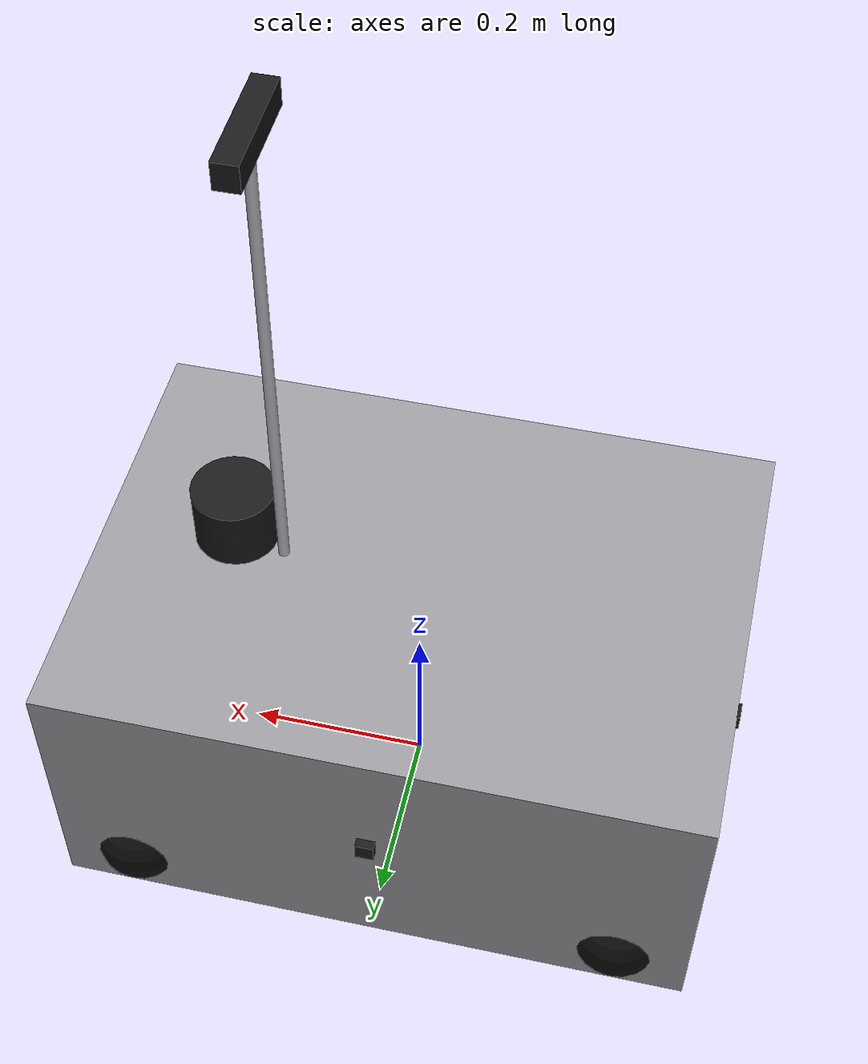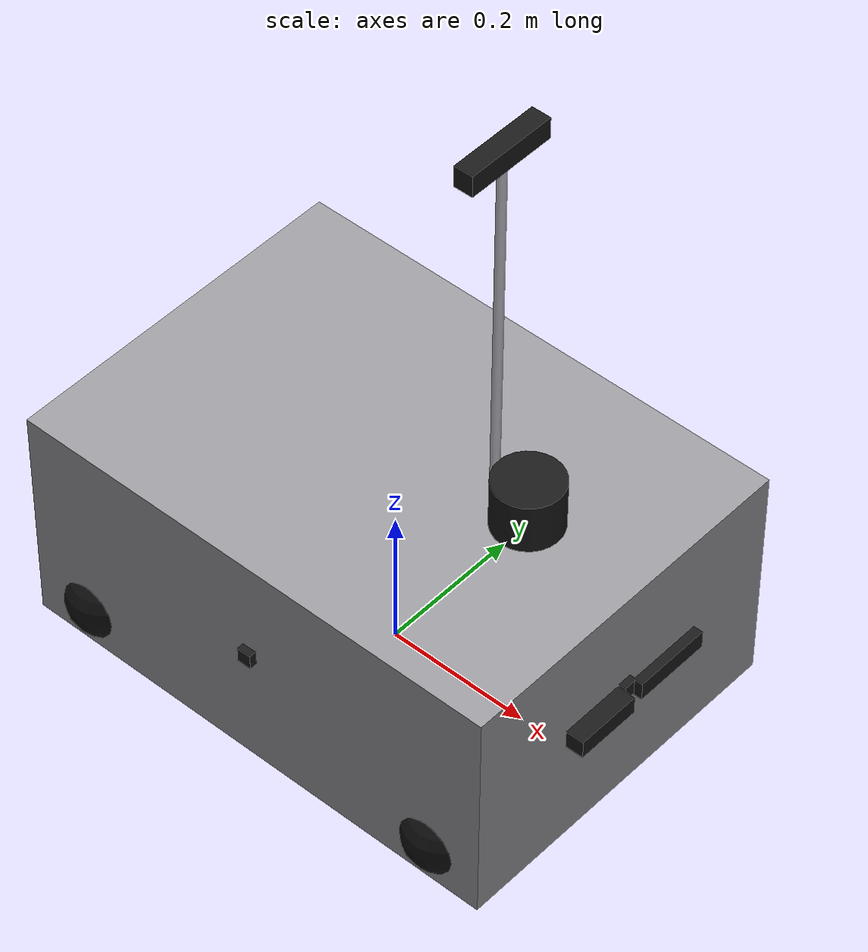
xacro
<?xml version="1.0"?>
<robot name="mobi" xmlns:xacro="http://www.ros.org/wiki/xacro">

  <!-- dimensoes ajustaveis -->
  <xacro:property name="base_length" value="0.70"/>
  <xacro:property name="base_width"  value="0.50"/>
  <!-- 0.32 medido: com 0.40 o chao aparecia a +8 cm de base_link na nuvem do
       Ouster (ajuste de plano no chao, robo parado, 2026-10-06). -->
  <xacro:property name="base_height" value="0.32"/>

  <xacro:property name="wheel_radius" value="0.05"/>
  <xacro:property name="wheel_width"  value="0.03"/>
  <xacro:property name="wheel_inset_x" value="0.08"/>
  <xacro:property name="wheel_inset_y" value="0.03"/>

  <xacro:property name="tof_size" value="0.02"/>

  <!-- Medido pelo tampo visto do sensor: a borda frontal fica ~15 cm a frente
       do Ouster e o tampo se estende ~0.6 m para tras. -->
  <xacro:property name="ouster_x" value="${base_length/2 - 0.15}"/>
  <xacro:property name="ouster_radius" value="0.045"/>
  <xacro:property name="ouster_height" value="0.07"/>
  <xacro:property name="ouster_standoff" value="0.02"/>

  <xacro:property name="d435i_size" value="0.025 0.09 0.025"/>
  <xacro:property name="t265_size"  value="0.013 0.108 0.025"/>
  <xacro:property name="d455_size" value="0.026 0.124 0.029"/>
  <xacro:property name="camera_face_standoff" value="0.015"/>
  <xacro:property name="camera_z" value="${base_height*0.55}"/>

  <xacro:property name="mast_x" value="0.15"/>
  <xacro:property name="mast_length" value="0.55"/>
  <xacro:property name="mast_radius" value="0.006"/>

  <xacro:property name="ouster_yaw" value="0"/>

  <!-- materiais (so visual) -->
  <material name="mobi_body_gray">
    <color rgba="0.6 0.6 0.62 1.0"/>
  </material>
  <material name="mobi_wheel_black">
    <color rgba="0.05 0.05 0.05 1.0"/>
  </material>
  <material name="mobi_sensor_dark">
    <color rgba="0.1 0.1 0.1 1.0"/>
  </material>
  <material name="mobi_mast_metal">
    <color rgba="0.75 0.75 0.78 1.0"/>
  </material>

  <!-- macros -->
  <xacro:macro name="mobi_caster" params="name x y">
    <link name="${name}">
      <visual>
        <geometry>
          <sphere radius="${wheel_radius}"/>
        </geometry>
        <material name="mobi_wheel_black"/>
      </visual>
    </link>
    <joint name="${name}_joint" type="fixed">
      <parent link="base_link"/>
      <child link="${name}"/>
      <origin xyz="${x} ${y} ${wheel_radius}" rpy="0 0 0"/>
    </joint>
  </xacro:macro>

  <xacro:macro name="mobi_tof" params="name x y yaw">
    <link name="${name}">
      <visual>
        <geometry>
          <box size="${tof_size} ${tof_size} ${tof_size}"/>
        </geometry>
        <material name="mobi_sensor_dark"/>
      </visual>
    </link>
    <joint name="${name}_joint" type="fixed">
      <parent link="base_link"/>
      <child link="${name}"/>
      <origin xyz="${x} ${y} ${camera_z}" rpy="0 0 ${yaw}"/>
    </joint>
  </xacro:macro>

  <!-- base -->
  <link name="base_link">
    <visual>
      <origin xyz="0 0 ${base_height/2}" rpy="0 0 0"/>
      <geometry>
        <box size="${base_length} ${base_width} ${base_height}"/>
      </geometry>
      <material name="mobi_body_gray"/>
    </visual>
  </link>

  <!-- rodinhas (so visual) -->
  <xacro:mobi_caster name="wheel_front_left"
    x="${base_length/2 - wheel_inset_x}" y="${base_width/2 - wheel_inset_y}"/>
  <xacro:mobi_caster name="wheel_front_right"
    x="${base_length/2 - wheel_inset_x}" y="${-(base_width/2 - wheel_inset_y)}"/>
  <xacro:mobi_caster name="wheel_rear_left"
    x="${-(base_length/2 - wheel_inset_x)}" y="${base_width/2 - wheel_inset_y}"/>
  <xacro:mobi_caster name="wheel_rear_right"
    x="${-(base_length/2 - wheel_inset_x)}" y="${-(base_width/2 - wheel_inset_y)}"/>

  <!-- Ouster (topo, quase na frente) -->
  <link name="os_sensor">
    <visual>
      <origin xyz="0 0 ${ouster_height/2}" rpy="0 0 0"/>
      <geometry>
        <cylinder radius="${ouster_radius}" length="${ouster_height}"/>
      </geometry>
      <material name="mobi_sensor_dark"/>
    </visual>
  </link>
  <joint name="os_sensor_joint" type="fixed">
    <parent link="base_link"/>
    <child link="os_sensor"/>
    <origin xyz="${ouster_x} 0 ${base_height + ouster_standoff}" rpy="0 0 ${ouster_yaw}"/>
  </joint>

  <!-- D435i + T265 (face frontal) -->
  <link name="d435i_link">
    <visual>
      <geometry>
        <box size="${d435i_size}"/>
      </geometry>
      <material name="mobi_sensor_dark"/>
    </visual>
  </link>
  <joint name="d435i_joint" type="fixed">
    <parent link="base_link"/>
    <child link="d435i_link"/>
    <origin xyz="${base_length/2 + camera_face_standoff} -0.06 ${camera_z}" rpy="0 0 0"/>
  </joint>

  <link name="t265_mount">
    <visual>
      <geometry>
        <box size="${t265_size}"/>
      </geometry>
      <material name="mobi_sensor_dark"/>
    </visual>
  </link>
  <joint name="t265_mount_joint" type="fixed">
    <parent link="base_link"/>
    <child link="t265_mount"/>
    <origin xyz="${base_length/2 + camera_face_standoff} 0.06 ${camera_z}" rpy="0 0 0"/>
  </joint>

  <link name="odom_frame"/>
  <joint name="t265_odom_joint" type="fixed">
    <parent link="t265_mount"/>
    <child link="odom_frame"/>
    <origin xyz="0 0 0" rpy="0 0 0"/>
  </joint>

  <!-- mastro + D455 (suspensa do topo) -->
  <link name="mast_link">
    <visual>
      <origin xyz="0 0 ${mast_length/2}" rpy="0 0 0"/>
      <geometry>
        <cylinder radius="${mast_radius}" length="${mast_length}"/>
      </geometry>
      <material name="mobi_mast_metal"/>
    </visual>
  </link>
  <joint name="mast_joint" type="fixed">
    <parent link="base_link"/>
    <child link="mast_link"/>
    <origin xyz="${mast_x} 0 ${base_height}" rpy="0 0 0"/>
  </joint>

  <link name="d455_link">
    <visual>
      <geometry>
        <box size="${d455_size}"/>
      </geometry>
      <material name="mobi_sensor_dark"/>
    </visual>
  </link>
  <joint name="d455_joint" type="fixed">
    <parent link="mast_link"/>
    <child link="d455_link"/>
    <origin xyz="0 0 ${mast_length}" rpy="0 0 0"/>
  </joint>

  <!-- TOFs (uma por face lateral) -->
  <xacro:mobi_tof name="tof3d_front_link" x="${base_length/2}"  y="0" yaw="0"/>
  <xacro:mobi_tof name="tof3d_rear_link"  x="${-base_length/2}" y="0" yaw="${pi}"/>
  <xacro:mobi_tof name="tof3d_left_link"  x="0" y="${base_width/2}"  yaw="${pi/2}"/>
  <xacro:mobi_tof name="tof3d_right_link" x="0" y="${-base_width/2}" yaw="${-pi/2}"/>

</robot>
